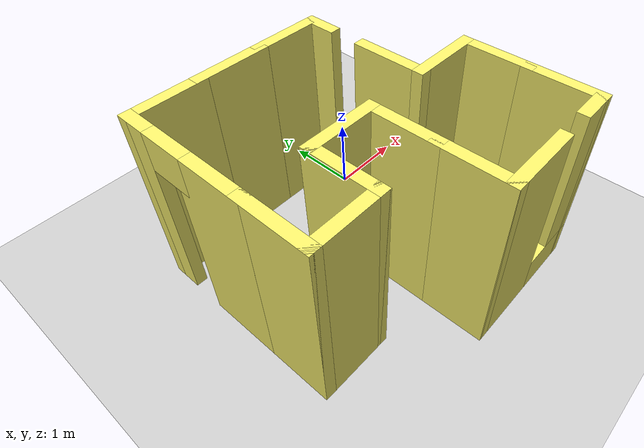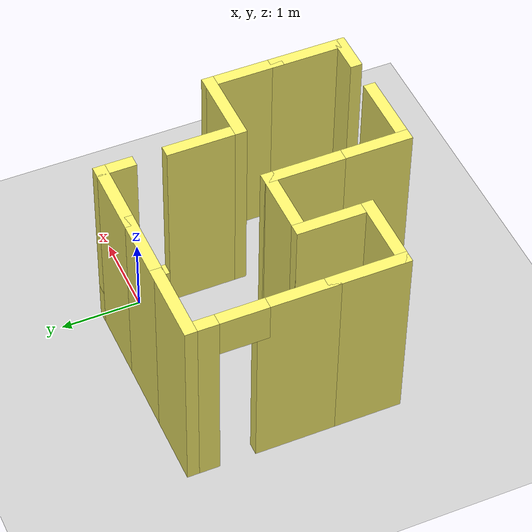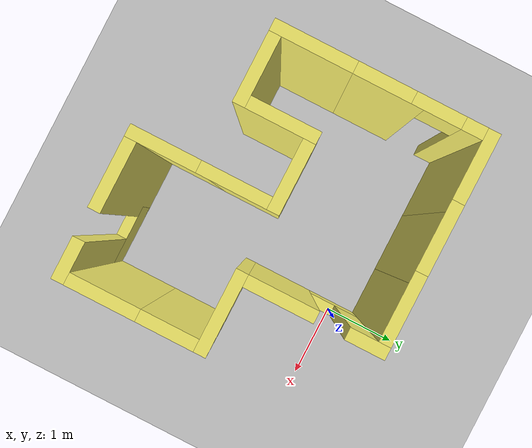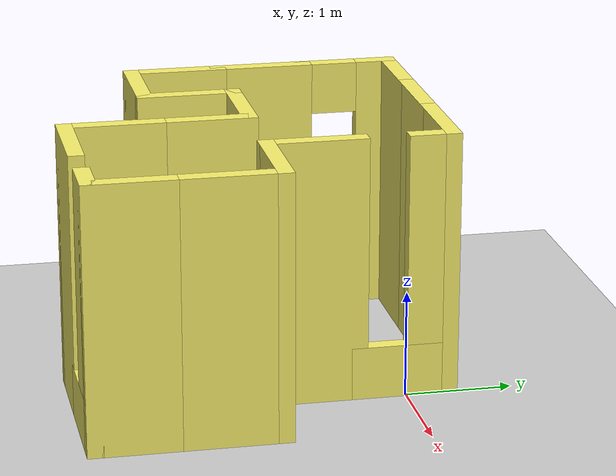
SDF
<sdf version="1.7">
 <world name="default">
  <light name="sun" type="directional">
   <pose>0 0 10 0 -0 0</pose>
   <diffuse>0.8 0.8 0.8 1</diffuse>
   <specular>0.2 0.2 0.2 1</specular>
   <attenuation>
    <range>1000</range>
    <constant>0.9</constant>
    <linear>0.01</linear>
    <quadratic>0.001</quadratic>
   </attenuation>
   <direction>-0.5 0.1 -0.9</direction>
   <spot><inner_angle>0</inner_angle><outer_angle>0</outer_angle><falloff>0</falloff></spot>
  </light>
  <model name="ground_plane">
   <static>1</static>
   <link name="link">
    <collision name="collision">
     <geometry><plane><normal>0 0 1</normal><size>100 100</size></plane></geometry>
     <surface>
      <contact><collide_bitmask>65535</collide_bitmask></contact>
      <friction><ode><mu>100</mu><mu2>50</mu2></ode></friction>
     </surface>
    </collision>
    <visual name="visual">
     <cast_shadows>0</cast_shadows>
     <geometry><plane><normal>0 0 1</normal><size>100 100</size></plane></geometry>
     <material>
      <script><uri>file://media/materials/scripts/gazebo.material</uri><name>Gazebo/Grey</name></script>
     </material>
    </visual>
   </link>
  </model>
  <gravity>0 0 -9.8</gravity>
  <magnetic_field>6e-06 2.3e-05 -4.2e-05</magnetic_field>
  <atmosphere type="adiabatic"/>
  <physics type="ode">
   <max_step_size>0.001</max_step_size>
   <real_time_factor>1</real_time_factor>
   <real_time_update_rate>1000</real_time_update_rate>
  </physics>
  <scene><ambient>0.4 0.4 0.4 1</ambient><background>0.7 0.7 0.7 1</background><shadows>1</shadows></scene>
  <audio><device>default</device></audio>
  <spherical_coordinates>
   <surface_model>EARTH_WGS84</surface_model>
   <latitude_deg>0</latitude_deg>
   <longitude_deg>0</longitude_deg>
   <elevation>0</elevation>
   <heading_deg>0</heading_deg>
  </spherical_coordinates>
  <model name="test_building">
   <pose>-0.89 -1.29 0 0 -0 0</pose>
   <link name="Wall_0">
    <collision name="Wall_0_Collision">
     <geometry><box><size>1 0.15 2.5</size></box></geometry>
     <pose>0 0 1.25 0 -0 0</pose>
    </collision>
    <visual name="Wall_0_Visual">
     <pose>0 0 1.25 0 -0 0</pose>
     <geometry><box><size>1 0.15 2.5</size></box></geometry>
     <material>
      <script><uri>file://media/materials/scripts/gazebo.material</uri><name>Gazebo/Grey</name></script>
      <ambient>0.976471 0.941176 0.419608 1</ambient>
     </material>
     <meta><layer>0</layer></meta>
    </visual>
    <pose>-1.7 -0.425 0 0 -0 -1.5708</pose>
   </link>
   <link name="Wall_1">
    <collision name="Wall_1_Collision">
     <geometry><box><size>1 0.15 2.5</size></box></geometry>
     <pose>0 0 1.25 0 -0 0</pose>
    </collision>
    <visual name="Wall_1_Visual">
     <pose>0 0 1.25 0 -0 0</pose>
     <geometry><box><size>1 0.15 2.5</size></box></geometry>
     <material>
      <script><uri>file://media/materials/scripts/gazebo.material</uri><name>Gazebo/Grey</name></script>
      <ambient>0.976471 0.941176 0.419608 1</ambient>
     </material>
     <meta><layer>0</layer></meta>
    </visual>
    <pose>-1.275 -0.85 0 0 -0 0</pose>
   </link>
   <link name="Wall_10">
    <collision name="Wall_10_Collision">
     <geometry><box><size>1 0.15 2.5</size></box></geometry>
     <pose>0 0 1.25 0 -0 0</pose>
    </collision>
    <visual name="Wall_10_Visual">
     <pose>0 0 1.25 0 -0 0</pose>
     <geometry><box><size>1 0.15 2.5</size></box></geometry>
     <material>
      <script><uri>file://media/materials/scripts/gazebo.material</uri><name>Gazebo/Grey</name></script>
      <ambient>0.976471 0.941176 0.419608 1</ambient>
     </material>
     <meta><layer>0</layer></meta>
    </visual>
    <pose>1.275 0 0 0 -0 3.14159</pose>
   </link>
   <link name="Wall_11">
    <collision name="Wall_11_Collision">
     <geometry><box><size>1 0.15 2.5</size></box></geometry>
     <pose>0 0 1.25 0 -0 0</pose>
    </collision>
    <visual name="Wall_11_Visual">
     <pose>0 0 1.25 0 -0 0</pose>
     <geometry><box><size>1 0.15 2.5</size></box></geometry>
     <material>
      <script><uri>file://media/materials/scripts/gazebo.material</uri><name>Gazebo/Grey</name></script>
      <ambient>0.976471 0.941176 0.419608 1</ambient>
     </material>
     <meta><layer>0</layer></meta>
    </visual>
    <pose>0.85 0.425 0 0 -0 1.5708</pose>
   </link>
   <link name="Wall_12">
    <pose>0.85 1.275 0 0 -0 1.5708</pose>
    <visual name="Wall_12_Visual_0">
     <pose>0 0 0.25 0 -0 0</pose>
     <geometry><box><size>1 0.15 0.5</size></box></geometry>
     <material>
      <script><uri>file://media/materials/scripts/gazebo.material</uri><name>Gazebo/Grey</name></script>
      <ambient>0.976471 0.941176 0.419608 1</ambient>
     </material>
     <meta><layer>0</layer></meta>
    </visual>
    <collision name="Wall_12_Collision_0">
     <geometry><box><size>1 0.15 0.5</size></box></geometry>
     <pose>0 0 0.25 0 -0 0</pose>
    </collision>
    <visual name="Wall_12_Visual_1">
     <pose>0.257888 0 1.5 0 -0 0</pose>
     <geometry><box><size>0.484224 0.15 2</size></box></geometry>
     <material>
      <script><uri>file://media/materials/scripts/gazebo.material</uri><name>Gazebo/Grey</name></script>
      <ambient>0.976471 0.941176 0.419608 1</ambient>
     </material>
     <meta><layer>0</layer></meta>
    </visual>
    <collision name="Wall_12_Collision_1">
     <geometry><box><size>0.484224 0.15 2</size></box></geometry>
     <pose>0.257888 0 1.5 0 -0 0</pose>
    </collision>
   </link>
   <link name="Wall_13">
    <collision name="Wall_13_Collision">
     <geometry><box><size>1 0.15 2.5</size></box></geometry>
     <pose>0 0 1.25 0 -0 0</pose>
    </collision>
    <visual name="Wall_13_Visual">
     <pose>0 0 1.25 0 -0 0</pose>
     <geometry><box><size>1 0.15 2.5</size></box></geometry>
     <material>
      <script><uri>file://media/materials/scripts/gazebo.material</uri><name>Gazebo/Grey</name></script>
      <ambient>0.976471 0.941176 0.419608 1</ambient>
     </material>
     <meta><layer>0</layer></meta>
    </visual>
    <pose>0.425 1.7 0 0 -0 3.14159</pose>
   </link>
   <link name="Wall_14">
    <collision name="Wall_14_Collision">
     <geometry><box><size>1 0.15 2.5</size></box></geometry>
     <pose>0 0 1.25 0 -0 0</pose>
    </collision>
    <visual name="Wall_14_Visual">
     <pose>0 0 1.25 0 -0 0</pose>
     <geometry><box><size>1 0.15 2.5</size></box></geometry>
     <material>
      <script><uri>file://media/materials/scripts/gazebo.material</uri><name>Gazebo/Grey</name></script>
      <ambient>0.976471 0.941176 0.419608 1</ambient>
     </material>
     <meta><layer>0</layer></meta>
    </visual>
    <pose>-0.425 1.7 0 0 -0 3.14159</pose>
   </link>
   <link name="Wall_15">
    <collision name="Wall_15_Collision">
     <geometry><box><size>1 0.15 2.5</size></box></geometry>
     <pose>0 0 1.25 0 -0 0</pose>
    </collision>
    <visual name="Wall_15_Visual">
     <pose>0 0 1.25 0 -0 0</pose>
     <geometry><box><size>1 0.15 2.5</size></box></geometry>
     <material>
      <script><uri>file://media/materials/scripts/gazebo.material</uri><name>Gazebo/Grey</name></script>
      <ambient>0.976471 0.941176 0.419608 1</ambient>
     </material>
     <meta><layer>0</layer></meta>
    </visual>
    <pose>-1.275 1.7 0 0 -0 3.14159</pose>
   </link>
   <link name="Wall_16">
    <pose>-1.7 1.275 0 0 -0 -1.5708</pose>
    <visual name="Wall_16_Visual_0">
     <pose>-0.2975 0 1.25 0 -0 0</pose>
     <geometry><box><size>0.405 0.15 2.5</size></box></geometry>
     <material>
      <script><uri>file://media/materials/scripts/gazebo.material</uri><name>Gazebo/Grey</name></script>
      <ambient>0.976471 0.941176 0.419608 1</ambient>
     </material>
     <meta><layer>0</layer></meta>
    </visual>
    <collision name="Wall_16_Collision_0">
     <geometry><box><size>0.405 0.15 2.5</size></box></geometry>
     <pose>-0.2975 0 1.25 0 -0 0</pose>
    </collision>
    <visual name="Wall_16_Visual_1">
     <pose>0.2025 0 2.25 0 -0 0</pose>
     <geometry><box><size>0.595 0.15 0.5</size></box></geometry>
     <material>
      <script><uri>file://media/materials/scripts/gazebo.material</uri><name>Gazebo/Grey</name></script>
      <ambient>0.976471 0.941176 0.419608 1</ambient>
     </material>
     <meta><layer>0</layer></meta>
    </visual>
    <collision name="Wall_16_Collision_1">
     <geometry><box><size>0.595 0.15 0.5</size></box></geometry>
     <pose>0.2025 0 2.25 0 -0 0</pose>
    </collision>
   </link>
   <link name="Wall_18">
    <collision name="Wall_18_Collision">
     <geometry><box><size>1 0.15 2.5</size></box></geometry>
     <pose>0 0 1.25 0 -0 0</pose>
    </collision>
    <visual name="Wall_18_Visual">
     <pose>0 0 1.25 0 -0 0</pose>
     <geometry><box><size>1 0.15 2.5</size></box></geometry>
     <material>
      <script><uri>file://media/materials/scripts/gazebo.material</uri><name>Gazebo/Grey</name></script>
      <ambient>0.976471 0.941176 0.419608 1</ambient>
     </material>
     <meta><layer>0</layer></meta>
    </visual>
    <pose>-1.7 0.425 0 0 -0 -1.5708</pose>
   </link>
   <link name="Wall_2">
    <collision name="Wall_2_Collision">
     <geometry><box><size>1 0.15 2.5</size></box></geometry>
     <pose>0 0 1.25 0 -0 0</pose>
    </collision>
    <visual name="Wall_2_Visual">
     <pose>0 0 1.25 0 -0 0</pose>
     <geometry><box><size>1 0.15 2.5</size></box></geometry>
     <material>
      <script><uri>file://media/materials/scripts/gazebo.material</uri><name>Gazebo/Grey</name></script>
      <ambient>0.976471 0.941176 0.419608 1</ambient>
     </material>
     <meta><layer>0</layer></meta>
    </visual>
    <pose>-0.85 -0.425 0 0 -0 1.5708</pose>
   </link>
   <link name="Wall_3">
    <collision name="Wall_3_Collision">
     <geometry><box><size>1 0.15 2.5</size></box></geometry>
     <pose>0 0 1.25 0 -0 0</pose>
    </collision>
    <visual name="Wall_3_Visual">
     <pose>0 0 1.25 0 -0 0</pose>
     <geometry><box><size>1 0.15 2.5</size></box></geometry>
     <material>
      <script><uri>file://media/materials/scripts/gazebo.material</uri><name>Gazebo/Grey</name></script>
      <ambient>0.976471 0.941176 0.419608 1</ambient>
     </material>
     <meta><layer>0</layer></meta>
    </visual>
    <pose>-0.425 0 0 0 -0 0</pose>
   </link>
   <link name="Wall_4">
    <collision name="Wall_4_Collision">
     <geometry><box><size>1 0.15 2.5</size></box></geometry>
     <pose>0 0 1.25 0 -0 0</pose>
    </collision>
    <visual name="Wall_4_Visual">
     <pose>0 0 1.25 0 -0 0</pose>
     <geometry><box><size>1 0.15 2.5</size></box></geometry>
     <material>
      <script><uri>file://media/materials/scripts/gazebo.material</uri><name>Gazebo/Grey</name></script>
      <ambient>0.976471 0.941176 0.419608 1</ambient>
     </material>
     <meta><layer>0</layer></meta>
    </visual>
    <pose>-0 -0.425 0 0 -0 -1.5708</pose>
   </link>
   <link name="Wall_5">
    <collision name="Wall_5_Collision">
     <geometry><box><size>1 0.15 2.5</size></box></geometry>
     <pose>0 0 1.25 0 -0 0</pose>
    </collision>
    <visual name="Wall_5_Visual">
     <pose>0 0 1.25 0 -0 0</pose>
     <geometry><box><size>1 0.15 2.5</size></box></geometry>
     <material>
      <script><uri>file://media/materials/scripts/gazebo.material</uri><name>Gazebo/Grey</name></script>
      <ambient>0.976471 0.941176 0.419608 1</ambient>
     </material>
     <meta><layer>0</layer></meta>
    </visual>
    <pose>-0 -1.275 0 0 -0 -1.5708</pose>
   </link>
   <link name="Wall_6">
    <collision name="Wall_6_Collision">
     <geometry><box><size>1 0.15 2.5</size></box></geometry>
     <pose>0 0 1.25 0 -0 0</pose>
    </collision>
    <visual name="Wall_6_Visual">
     <pose>0 0 1.25 0 -0 0</pose>
     <geometry><box><size>1 0.15 2.5</size></box></geometry>
     <material>
      <script><uri>file://media/materials/scripts/gazebo.material</uri><name>Gazebo/Grey</name></script>
      <ambient>0.976471 0.941176 0.419608 1</ambient>
     </material>
     <meta><layer>0</layer></meta>
    </visual>
    <pose>0.425 -1.7 0 0 -0 0</pose>
   </link>
   <link name="Wall_7">
    <pose>1.275 -1.7 0 0 -0 0</pose>
    <visual name="Wall_7_Visual_0">
     <pose>0 0 0.25 0 -0 0</pose>
     <geometry><box><size>1 0.15 0.5</size></box></geometry>
     <material>
      <script><uri>file://media/materials/scripts/gazebo.material</uri><name>Gazebo/Grey</name></script>
      <ambient>0.976471 0.941176 0.419608 1</ambient>
     </material>
     <meta><layer>0</layer></meta>
    </visual>
    <collision name="Wall_7_Collision_0">
     <geometry><box><size>1 0.15 0.5</size></box></geometry>
     <pose>0 0 0.25 0 -0 0</pose>
    </collision>
    <visual name="Wall_7_Visual_1">
     <pose>0.245282 0 1.5 0 -0 0</pose>
     <geometry><box><size>0.509436 0.15 2</size></box></geometry>
     <material>
      <script><uri>file://media/materials/scripts/gazebo.material</uri><name>Gazebo/Grey</name></script>
      <ambient>0.976471 0.941176 0.419608 1</ambient>
     </material>
     <meta><layer>0</layer></meta>
    </visual>
    <collision name="Wall_7_Collision_1">
     <geometry><box><size>0.509436 0.15 2</size></box></geometry>
     <pose>0.245282 0 1.5 0 -0 0</pose>
    </collision>
   </link>
   <link name="Wall_8">
    <collision name="Wall_8_Collision">
     <geometry><box><size>1 0.15 2.5</size></box></geometry>
     <pose>0 0 1.25 0 -0 0</pose>
    </collision>
    <visual name="Wall_8_Visual">
     <pose>0 0 1.25 0 -0 0</pose>
     <geometry><box><size>1 0.15 2.5</size></box></geometry>
     <material>
      <script><uri>file://media/materials/scripts/gazebo.material</uri><name>Gazebo/Grey</name></script>
      <ambient>0.976471 0.941176 0.419608 1</ambient>
     </material>
     <meta><layer>0</layer></meta>
    </visual>
    <pose>1.7 -1.275 0 0 -0 1.5708</pose>
   </link>
   <link name="Wall_9">
    <collision name="Wall_9_Collision">
     <geometry><box><size>1 0.15 2.5</size></box></geometry>
     <pose>0 0 1.25 0 -0 0</pose>
    </collision>
    <visual name="Wall_9_Visual">
     <pose>0 0 1.25 0 -0 0</pose>
     <geometry><box><size>1 0.15 2.5</size></box></geometry>
     <material>
      <script><uri>file://media/materials/scripts/gazebo.material</uri><name>Gazebo/Grey</name></script>
      <ambient>0.976471 0.941176 0.419608 1</ambient>
     </material>
     <meta><layer>0</layer></meta>
    </visual>
    <pose>1.7 -0.425 0 0 -0 1.5708</pose>
   </link>
   <static>1</static>
  </model>
 </world>
</sdf>
